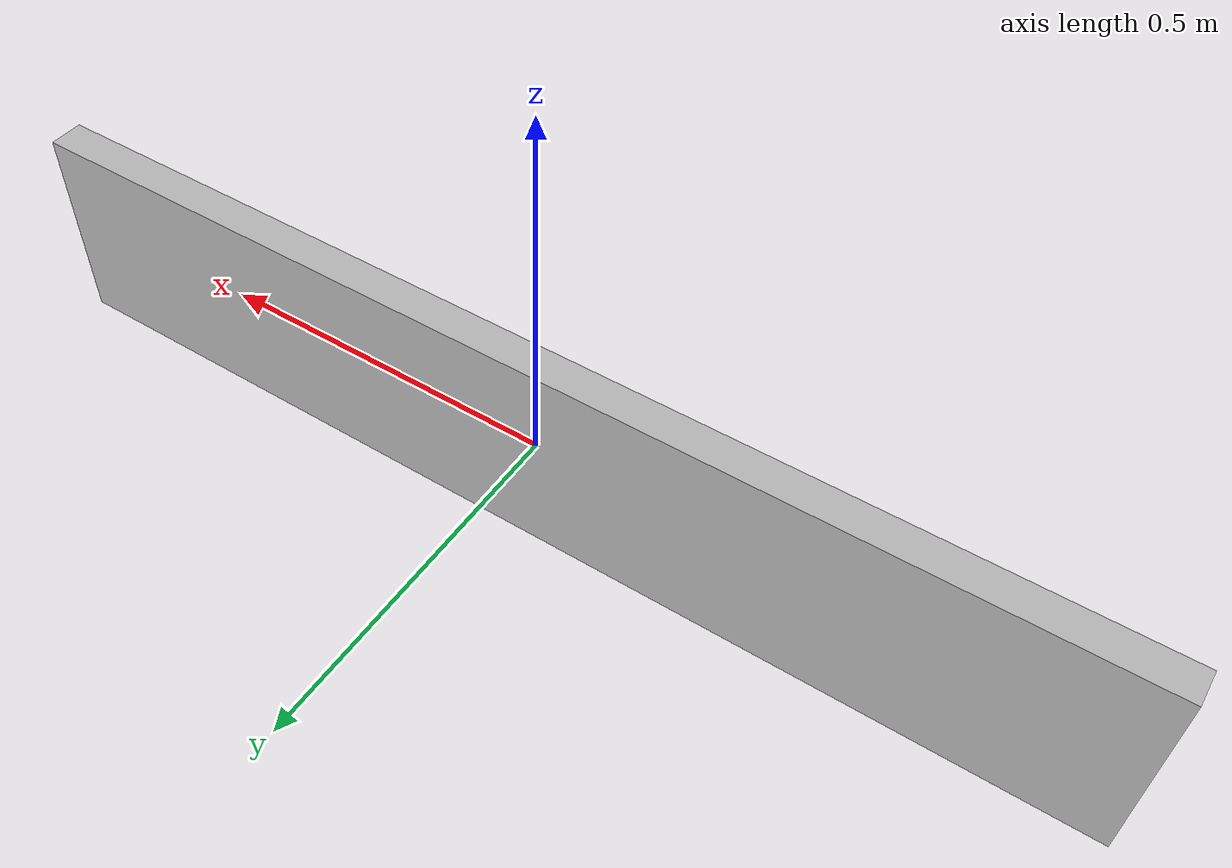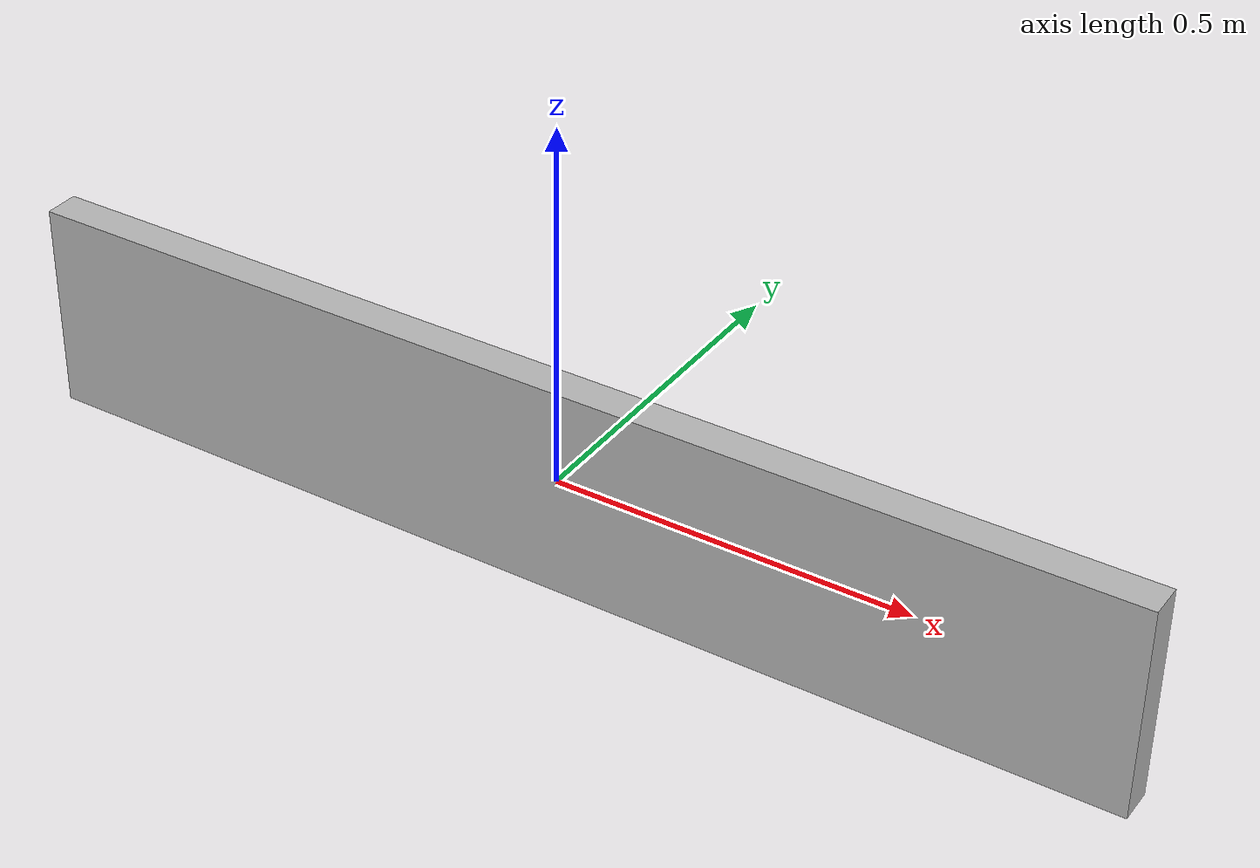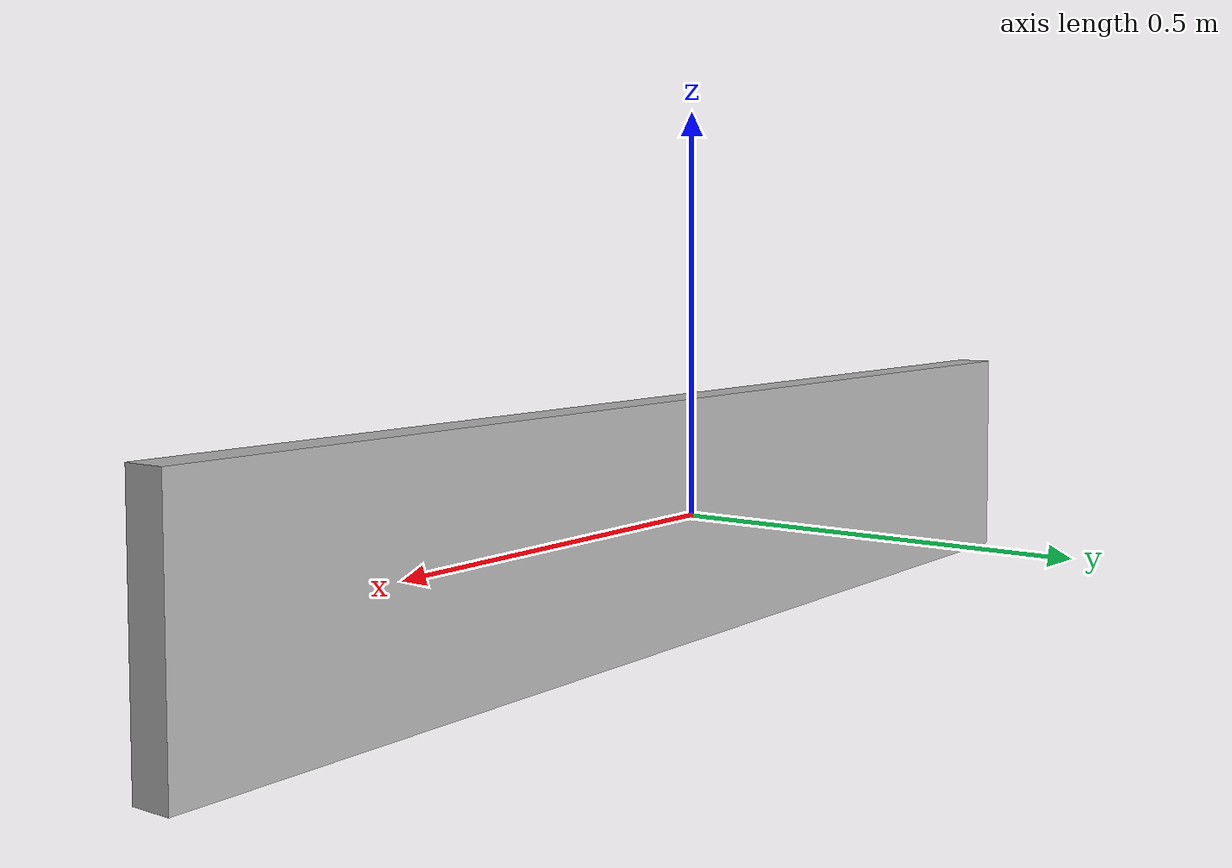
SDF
<?xml version="1.0"?>

<sdf version="1.5">
    <model name="wall_y">
        <static>true</static>
        <link name="link">
            <collision name="collision">
                <geometry>
                    <box>
                        <size>1.6 0.05 0.3</size>
                    </box>
                </geometry>
            </collision>
            <visual name="visual">
                <cast_shadows>true</cast_shadows>
                <geometry>
                <box>
                    <size>1.6 0.05 0.3</size>
                </box>
                </geometry>
            </visual>
        </link>
    </model>
</sdf>
